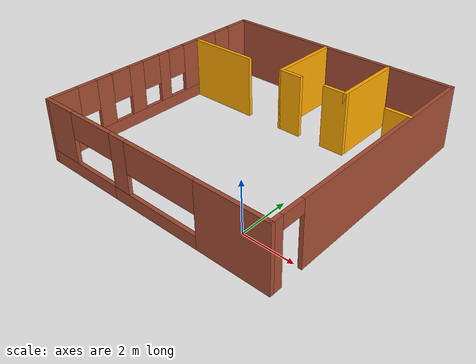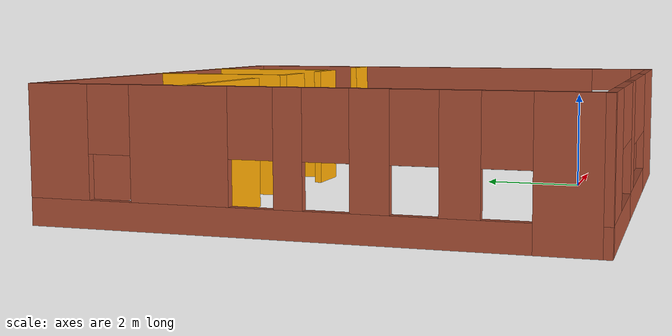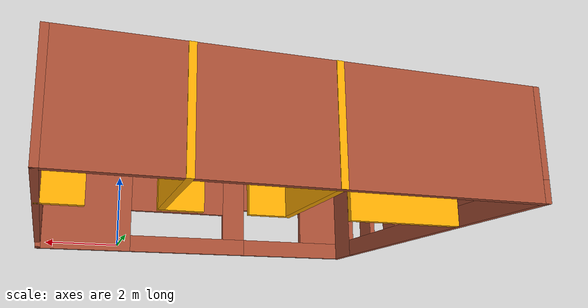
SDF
<?xml version='1.0'?>
<sdf version='1.6'>
  <model name='environment'>
    <pose frame=''>-2.69784 3.58738 0 0 -0 0</pose>
    <link name='Wall_1'>
      <pose frame=''>4.925 -0.006826 0 0 0 -1.5708</pose>
      <visual name='Wall_1_Visual_0'>
        <pose frame=''>-0.690166 0 1.25 0 -0 0</pose>
        <geometry>
          <box>
            <size>8.61967 0.15 2.5</size>
          </box>
        </geometry>
        <material>
          <script>
            <uri>file://media/materials/scripts/gazebo.material</uri>
            <name>Gazebo/Bricks</name>
          </script>
          <ambient>1 1 1 1</ambient>
        </material>
        <meta>
          <layer>0</layer>
        </meta>
      </visual>
      <collision name='Wall_1_Collision_0'>
        <geometry>
          <box>
            <size>8.61967 0.15 2.5</size>
          </box>
        </geometry>
        <pose frame=''>-0.690166 0 1.25 0 -0 0</pose>
      </collision>
      <visual name='Wall_1_Visual_1'>
        <pose frame=''>4.75983 0 1.25 0 -0 0</pose>
        <geometry>
          <box>
            <size>0.480332 0.15 2.5</size>
          </box>
        </geometry>
        <material>
          <script>
            <uri>file://media/materials/scripts/gazebo.material</uri>
            <name>Gazebo/Bricks</name>
          </script>
          <ambient>1 1 1 1</ambient>
        </material>
        <meta>
          <layer>0</layer>
        </meta>
      </visual>
      <collision name='Wall_1_Collision_1'>
        <geometry>
          <box>
            <size>0.480332 0.15 2.5</size>
          </box>
        </geometry>
        <pose frame=''>4.75983 0 1.25 0 -0 0</pose>
      </collision>
      <visual name='Wall_1_Visual_2'>
        <pose frame=''>4.06967 0 2.25 0 -0 0</pose>
        <geometry>
          <box>
            <size>0.9 0.15 0.5</size>
          </box>
        </geometry>
        <material>
          <script>
            <uri>file://media/materials/scripts/gazebo.material</uri>
            <name>Gazebo/Bricks</name>
          </script>
          <ambient>1 1 1 1</ambient>
        </material>
        <meta>
          <layer>0</layer>
        </meta>
      </visual>
      <collision name='Wall_1_Collision_2'>
        <geometry>
          <box>
            <size>0.9 0.15 0.5</size>
          </box>
        </geometry>
        <pose frame=''>4.06967 0 2.25 0 -0 0</pose>
      </collision>
    </link>
    <link name='Wall_15'>
      <collision name='Wall_15_Collision'>
        <geometry>
          <box>
            <size>3 0.15 2.5</size>
          </box>
        </geometry>
        <pose frame=''>0 0 1.25 0 -0 0</pose>
      </collision>
      <visual name='Wall_15_Visual'>
        <pose frame=''>0 0 1.25 0 -0 0</pose>
        <geometry>
          <box>
            <size>3 0.15 2.5</size>
          </box>
        </geometry>
        <material>
          <script>
            <uri>file://media/materials/scripts/gazebo.material</uri>
            <name>Gazebo/Grey</name>
          </script>
          <ambient>1 0.666667 0 1</ambient>
        </material>
        <meta>
          <layer>0</layer>
        </meta>
      </visual>
      <pose frame=''>2.40628 3.50683 0 0 0 -1.5708</pose>
    </link>
    <link name='Wall_19'>
      <collision name='Wall_19_Collision'>
        <geometry>
          <box>
            <size>3 0.15 2.5</size>
          </box>
        </geometry>
        <pose frame=''>0 0 1.25 0 -0 0</pose>
      </collision>
      <visual name='Wall_19_Visual'>
        <pose frame=''>0 0 1.25 0 -0 0</pose>
        <geometry>
          <box>
            <size>3 0.15 2.5</size>
          </box>
        </geometry>
        <material>
          <script>
            <uri>file://media/materials/scripts/gazebo.material</uri>
            <name>Gazebo/Grey</name>
          </script>
          <ambient>1 0.666667 0 1</ambient>
        </material>
        <meta>
          <layer>0</layer>
        </meta>
      </visual>
      <pose frame=''>-0.443723 3.50683 0 0 -0 1.5708</pose>
    </link>
    <link name='Wall_2'>
      <pose frame=''>0 -4.93183 0 0 -0 3.14159</pose>
      <visual name='Wall_2_Visual_0'>
        <pose frame=''>-3.58522 0 1.25 0 -0 0</pose>
        <geometry>
          <box>
            <size>2.82955 0.15 2.5</size>
          </box>
        </geometry>
        <material>
          <script>
            <uri>file://media/materials/scripts/gazebo.material</uri>
            <name>Gazebo/Bricks</name>
          </script>
          <ambient>1 1 1 1</ambient>
        </material>
        <meta>
          <layer>0</layer>
        </meta>
      </visual>
      <collision name='Wall_2_Collision_0'>
        <geometry>
          <box>
            <size>2.82955 0.15 2.5</size>
          </box>
        </geometry>
        <pose frame=''>-3.58522 0 1.25 0 -0 0</pose>
      </collision>
      <visual name='Wall_2_Visual_1'>
        <pose frame=''>-0.311138 0 0.25 0 -0 0</pose>
        <geometry>
          <box>
            <size>3.71862 0.15 0.5</size>
          </box>
        </geometry>
        <material>
          <script>
            <uri>file://media/materials/scripts/gazebo.material</uri>
            <name>Gazebo/Bricks</name>
          </script>
          <ambient>1 1 1 1</ambient>
        </material>
        <meta>
          <layer>0</layer>
        </meta>
      </visual>
      <collision name='Wall_2_Collision_1'>
        <geometry>
          <box>
            <size>3.71862 0.15 0.5</size>
          </box>
        </geometry>
        <pose frame=''>-0.311138 0 0.25 0 -0 0</pose>
      </collision>
      <visual name='Wall_2_Visual_2'>
        <pose frame=''>3.27409 0 0.25 0 -0 0</pose>
        <geometry>
          <box>
            <size>3.45183 0.15 0.5</size>
          </box>
        </geometry>
        <material>
          <script>
            <uri>file://media/materials/scripts/gazebo.material</uri>
            <name>Gazebo/Bricks</name>
          </script>
          <ambient>1 1 1 1</ambient>
        </material>
        <meta>
          <layer>0</layer>
        </meta>
      </visual>
      <collision name='Wall_2_Collision_2'>
        <geometry>
          <box>
            <size>3.45183 0.15 0.5</size>
          </box>
        </geometry>
        <pose frame=''>3.27409 0 0.25 0 -0 0</pose>
      </collision>
      <visual name='Wall_2_Visual_3'>
        <pose frame=''>4.27409 0 1.5 0 -0 0</pose>
        <geometry>
          <box>
            <size>1.45183 0.15 2</size>
          </box>
        </geometry>
        <material>
          <script>
            <uri>file://media/materials/scripts/gazebo.material</uri>
            <name>Gazebo/Bricks</name>
          </script>
          <ambient>1 1 1 1</ambient>
        </material>
        <meta>
          <layer>0</layer>
        </meta>
      </visual>
      <collision name='Wall_2_Collision_3'>
        <geometry>
          <box>
            <size>1.45183 0.15 2</size>
          </box>
        </geometry>
        <pose frame=''>4.27409 0 1.5 0 -0 0</pose>
      </collision>
      <visual name='Wall_2_Visual_4'>
        <pose frame=''>1.18886 0 1.5 0 -0 0</pose>
        <geometry>
          <box>
            <size>0.718624 0.15 2</size>
          </box>
        </geometry>
        <material>
          <script>
            <uri>file://media/materials/scripts/gazebo.material</uri>
            <name>Gazebo/Bricks</name>
          </script>
          <ambient>1 1 1 1</ambient>
        </material>
        <meta>
          <layer>0</layer>
        </meta>
      </visual>
      <collision name='Wall_2_Collision_4'>
        <geometry>
          <box>
            <size>0.718624 0.15 2</size>
          </box>
        </geometry>
        <pose frame=''>1.18886 0 1.5 0 -0 0</pose>
      </collision>
      <visual name='Wall_2_Visual_5'>
        <pose frame=''>1.18886 0 1.5 0 -0 0</pose>
        <geometry>
          <box>
            <size>0.718624 0.15 2</size>
          </box>
        </geometry>
        <material>
          <script>
            <uri>file://media/materials/scripts/gazebo.material</uri>
            <name>Gazebo/Bricks</name>
          </script>
          <ambient>1 1 1 1</ambient>
        </material>
        <meta>
          <layer>0</layer>
        </meta>
      </visual>
      <collision name='Wall_2_Collision_5'>
        <geometry>
          <box>
            <size>0.718624 0.15 2</size>
          </box>
        </geometry>
        <pose frame=''>1.18886 0 1.5 0 -0 0</pose>
      </collision>
      <visual name='Wall_2_Visual_6'>
        <pose frame=''>-0.67045 0 1.9 0 -0 0</pose>
        <geometry>
          <box>
            <size>3 0.15 1.2</size>
          </box>
        </geometry>
        <material>
          <script>
            <uri>file://media/materials/scripts/gazebo.material</uri>
            <name>Gazebo/Bricks</name>
          </script>
          <ambient>1 1 1 1</ambient>
        </material>
        <meta>
          <layer>0</layer>
        </meta>
      </visual>
      <collision name='Wall_2_Collision_6'>
        <geometry>
          <box>
            <size>3 0.15 1.2</size>
          </box>
        </geometry>
        <pose frame=''>-0.67045 0 1.9 0 -0 0</pose>
      </collision>
      <visual name='Wall_2_Visual_7'>
        <pose frame=''>2.54817 0 2 0 -0 0</pose>
        <geometry>
          <box>
            <size>2 0.15 1</size>
          </box>
        </geometry>
        <material>
          <script>
            <uri>file://media/materials/scripts/gazebo.material</uri>
            <name>Gazebo/Bricks</name>
          </script>
          <ambient>1 1 1 1</ambient>
        </material>
        <meta>
          <layer>0</layer>
        </meta>
      </visual>
      <collision name='Wall_2_Collision_7'>
        <geometry>
          <box>
            <size>2 0.15 1</size>
          </box>
        </geometry>
        <pose frame=''>2.54817 0 2 0 -0 0</pose>
      </collision>
      <visual name='Wall_2_Visual_8'>
        <pose frame=''>2.54817 0 2 0 -0 0</pose>
        <geometry>
          <box>
            <size>2 0.15 1</size>
          </box>
        </geometry>
        <material>
          <script>
            <uri>file://media/materials/scripts/gazebo.material</uri>
            <name>Gazebo/Bricks</name>
          </script>
          <ambient>1 1 1 1</ambient>
        </material>
        <meta>
          <layer>0</layer>
        </meta>
      </visual>
      <collision name='Wall_2_Collision_8'>
        <geometry>
          <box>
            <size>2 0.15 1</size>
          </box>
        </geometry>
        <pose frame=''>2.54817 0 2 0 -0 0</pose>
      </collision>
    </link>
    <link name='Wall_23'>
      <collision name='Wall_23_Collision'>
        <geometry>
          <box>
            <size>3 0.15 2.5</size>
          </box>
        </geometry>
        <pose frame=''>0 0 1.25 0 -0 0</pose>
      </collision>
      <visual name='Wall_23_Visual'>
        <pose frame=''>0 0 1.25 0 -0 0</pose>
        <geometry>
          <box>
            <size>3 0.15 2.5</size>
          </box>
        </geometry>
        <material>
          <script>
            <uri>file://media/materials/scripts/gazebo.material</uri>
            <name>Gazebo/Grey</name>
          </script>
          <ambient>1 0.666667 0 1</ambient>
        </material>
        <meta>
          <layer>0</layer>
        </meta>
      </visual>
      <pose frame=''>-3.4802 2.05808 0 0 -0 0</pose>
    </link>
    <link name='Wall_25'>
      <collision name='Wall_25_Collision'>
        <geometry>
          <box>
            <size>1 0.15 2.5</size>
          </box>
        </geometry>
        <pose frame=''>0 0 1.25 0 -0 0</pose>
      </collision>
      <visual name='Wall_25_Visual'>
        <pose frame=''>0 0 1.25 0 -0 0</pose>
        <geometry>
          <box>
            <size>1 0.15 2.5</size>
          </box>
        </geometry>
        <material>
          <script>
            <uri>file://media/materials/scripts/gazebo.material</uri>
            <name>Gazebo/Grey</name>
          </script>
          <ambient>1 0.666667 0 1</ambient>
        </material>
        <meta>
          <layer>0</layer>
        </meta>
      </visual>
      <pose frame=''>-0.018723 2.08183 0 0 -0 0</pose>
    </link>
    <link name='Wall_27'>
      <collision name='Wall_27_Collision'>
        <geometry>
          <box>
            <size>1 0.15 2.5</size>
          </box>
        </geometry>
        <pose frame=''>0 0 1.25 0 -0 0</pose>
      </collision>
      <visual name='Wall_27_Visual'>
        <pose frame=''>0 0 1.25 0 -0 0</pose>
        <geometry>
          <box>
            <size>1 0.15 2.5</size>
          </box>
        </geometry>
        <material>
          <script>
            <uri>file://media/materials/scripts/gazebo.material</uri>
            <name>Gazebo/Grey</name>
          </script>
          <ambient>1 0.666667 0 1</ambient>
        </material>
        <meta>
          <layer>0</layer>
        </meta>
      </visual>
      <pose frame=''>1.98128 2.08183 0 0 -0 3.14159</pose>
    </link>
    <link name='Wall_29'>
      <collision name='Wall_29_Collision'>
        <geometry>
          <box>
            <size>1 0.15 2.5</size>
          </box>
        </geometry>
        <pose frame=''>0 0 1.25 0 -0 0</pose>
      </collision>
      <visual name='Wall_29_Visual'>
        <pose frame=''>0 0 1.25 0 -0 0</pose>
        <geometry>
          <box>
            <size>1 0.15 2.5</size>
          </box>
        </geometry>
        <material>
          <script>
            <uri>file://media/materials/scripts/gazebo.material</uri>
            <name>Gazebo/Grey</name>
          </script>
          <ambient>1 0.666667 0 1</ambient>
        </material>
        <meta>
          <layer>0</layer>
        </meta>
      </visual>
      <pose frame=''>4.46952 2.0713 0 0 -0 3.14159</pose>
    </link>
    <link name='Wall_3'>
      <pose frame=''>-4.925 -0.006826 0 0 -0 1.5708</pose>
      <visual name='Wall_3_Visual_0'>
        <pose frame=''>-4.3936 0 1.25 0 -0 0</pose>
        <geometry>
          <box>
            <size>1.21279 0.15 2.5</size>
          </box>
        </geometry>
        <material>
          <script>
            <uri>file://media/materials/scripts/gazebo.material</uri>
            <name>Gazebo/Bricks</name>
          </script>
          <ambient>1 1 1 1</ambient>
        </material>
        <meta>
          <layer>0</layer>
        </meta>
      </visual>
      <collision name='Wall_3_Collision_0'>
        <geometry>
          <box>
            <size>1.21279 0.15 2.5</size>
          </box>
        </geometry>
        <pose frame=''>-4.3936 0 1.25 0 -0 0</pose>
      </collision>
      <visual name='Wall_3_Visual_1'>
        <pose frame=''>0.606395 0 0.25 0 -0 0</pose>
        <geometry>
          <box>
            <size>8.78721 0.15 0.5</size>
          </box>
        </geometry>
        <material>
          <script>
            <uri>file://media/materials/scripts/gazebo.material</uri>
            <name>Gazebo/Bricks</name>
          </script>
          <ambient>1 1 1 1</ambient>
        </material>
        <meta>
          <layer>0</layer>
        </meta>
      </visual>
      <collision name='Wall_3_Collision_1'>
        <geometry>
          <box>
            <size>8.78721 0.15 0.5</size>
          </box>
        </geometry>
        <pose frame=''>0.606395 0 0.25 0 -0 0</pose>
      </collision>
      <visual name='Wall_3_Visual_2'>
        <pose frame=''>-2.65571 0 1.5 0 -0 0</pose>
        <geometry>
          <box>
            <size>0.663011 0.15 2</size>
          </box>
        </geometry>
        <material>
          <script>
            <uri>file://media/materials/scripts/gazebo.material</uri>
            <name>Gazebo/Bricks</name>
          </script>
          <ambient>1 1 1 1</ambient>
        </material>
        <meta>
          <layer>0</layer>
        </meta>
      </visual>
      <collision name='Wall_3_Collision_2'>
        <geometry>
          <box>
            <size>0.663011 0.15 2</size>
          </box>
        </geometry>
        <pose frame=''>-2.65571 0 1.5 0 -0 0</pose>
      </collision>
      <visual name='Wall_3_Visual_3'>
        <pose frame=''>-1.19269 0 1.5 0 -0 0</pose>
        <geometry>
          <box>
            <size>0.663011 0.15 2</size>
          </box>
        </geometry>
        <material>
          <script>
            <uri>file://media/materials/scripts/gazebo.material</uri>
            <name>Gazebo/Bricks</name>
          </script>
          <ambient>1 1 1 1</ambient>
        </material>
        <meta>
          <layer>0</layer>
        </meta>
      </visual>
      <collision name='Wall_3_Collision_3'>
        <geometry>
          <box>
            <size>0.663011 0.15 2</size>
          </box>
        </geometry>
        <pose frame=''>-1.19269 0 1.5 0 -0 0</pose>
      </collision>
      <visual name='Wall_3_Visual_4'>
        <pose frame=''>0.190516 0 1.5 0 -0 0</pose>
        <geometry>
          <box>
            <size>0.50341 0.15 2</size>
          </box>
        </geometry>
        <material>
          <script>
            <uri>file://media/materials/scripts/gazebo.material</uri>
            <name>Gazebo/Bricks</name>
          </script>
          <ambient>1 1 1 1</ambient>
        </material>
        <meta>
          <layer>0</layer>
        </meta>
      </visual>
      <collision name='Wall_3_Collision_4'>
        <geometry>
          <box>
            <size>0.50341 0.15 2</size>
          </box>
        </geometry>
        <pose frame=''>0.190516 0 1.5 0 -0 0</pose>
      </collision>
      <visual name='Wall_3_Visual_5'>
        <pose frame=''>2.14563 0 1.5 0 -0 0</pose>
        <geometry>
          <box>
            <size>1.80682 0.15 2</size>
          </box>
        </geometry>
        <material>
          <script>
            <uri>file://media/materials/scripts/gazebo.material</uri>
            <name>Gazebo/Bricks</name>
          </script>
          <ambient>1 1 1 1</ambient>
        </material>
        <meta>
          <layer>0</layer>
        </meta>
      </visual>
      <collision name='Wall_3_Collision_5'>
        <geometry>
          <box>
            <size>1.80682 0.15 2</size>
          </box>
        </geometry>
        <pose frame=''>2.14563 0 1.5 0 -0 0</pose>
      </collision>
      <visual name='Wall_3_Visual_6'>
        <pose frame=''>4.42452 0 1.5 0 -0 0</pose>
        <geometry>
          <box>
            <size>1.15096 0.15 2</size>
          </box>
        </geometry>
        <material>
          <script>
            <uri>file://media/materials/scripts/gazebo.material</uri>
            <name>Gazebo/Bricks</name>
          </script>
          <ambient>1 1 1 1</ambient>
        </material>
        <meta>
          <layer>0</layer>
        </meta>
      </visual>
      <collision name='Wall_3_Collision_6'>
        <geometry>
          <box>
            <size>1.15096 0.15 2</size>
          </box>
        </geometry>
        <pose frame=''>4.42452 0 1.5 0 -0 0</pose>
      </collision>
      <visual name='Wall_3_Visual_7'>
        <pose frame=''>-3.38721 0 1.9 0 -0 0</pose>
        <geometry>
          <box>
            <size>0.8 0.15 1.2</size>
          </box>
        </geometry>
        <material>
          <script>
            <uri>file://media/materials/scripts/gazebo.material</uri>
            <name>Gazebo/Bricks</name>
          </script>
          <ambient>1 1 1 1</ambient>
        </material>
        <meta>
          <layer>0</layer>
        </meta>
      </visual>
      <collision name='Wall_3_Collision_7'>
        <geometry>
          <box>
            <size>0.8 0.15 1.2</size>
          </box>
        </geometry>
        <pose frame=''>-3.38721 0 1.9 0 -0 0</pose>
      </collision>
      <visual name='Wall_3_Visual_8'>
        <pose frame=''>-1.9242 0 1.9 0 -0 0</pose>
        <geometry>
          <box>
            <size>0.8 0.15 1.2</size>
          </box>
        </geometry>
        <material>
          <script>
            <uri>file://media/materials/scripts/gazebo.material</uri>
            <name>Gazebo/Bricks</name>
          </script>
          <ambient>1 1 1 1</ambient>
        </material>
        <meta>
          <layer>0</layer>
        </meta>
      </visual>
      <collision name='Wall_3_Collision_8'>
        <geometry>
          <box>
            <size>0.8 0.15 1.2</size>
          </box>
        </geometry>
        <pose frame=''>-1.9242 0 1.9 0 -0 0</pose>
      </collision>
      <visual name='Wall_3_Visual_9'>
        <pose frame=''>-0.461188 0 1.9 0 -0 0</pose>
        <geometry>
          <box>
            <size>0.8 0.15 1.2</size>
          </box>
        </geometry>
        <material>
          <script>
            <uri>file://media/materials/scripts/gazebo.material</uri>
            <name>Gazebo/Bricks</name>
          </script>
          <ambient>1 1 1 1</ambient>
        </material>
        <meta>
          <layer>0</layer>
        </meta>
      </visual>
      <collision name='Wall_3_Collision_9'>
        <geometry>
          <box>
            <size>0.8 0.15 1.2</size>
          </box>
        </geometry>
        <pose frame=''>-0.461188 0 1.9 0 -0 0</pose>
      </collision>
      <visual name='Wall_3_Visual_10'>
        <pose frame=''>0.842221 0 1.9 0 -0 0</pose>
        <geometry>
          <box>
            <size>0.8 0.15 1.2</size>
          </box>
        </geometry>
        <material>
          <script>
            <uri>file://media/materials/scripts/gazebo.material</uri>
            <name>Gazebo/Bricks</name>
          </script>
          <ambient>1 1 1 1</ambient>
        </material>
        <meta>
          <layer>0</layer>
        </meta>
      </visual>
      <collision name='Wall_3_Collision_10'>
        <geometry>
          <box>
            <size>0.8 0.15 1.2</size>
          </box>
        </geometry>
        <pose frame=''>0.842221 0 1.9 0 -0 0</pose>
      </collision>
      <visual name='Wall_3_Visual_11'>
        <pose frame=''>3.44904 0 1.9 0 -0 0</pose>
        <geometry>
          <box>
            <size>0.8 0.15 1.2</size>
          </box>
        </geometry>
        <material>
          <script>
            <uri>file://media/materials/scripts/gazebo.material</uri>
            <name>Gazebo/Bricks</name>
          </script>
          <ambient>1 1 1 1</ambient>
        </material>
        <meta>
          <layer>0</layer>
        </meta>
      </visual>
      <collision name='Wall_3_Collision_11'>
        <geometry>
          <box>
            <size>0.8 0.15 1.2</size>
          </box>
        </geometry>
        <pose frame=''>3.44904 0 1.9 0 -0 0</pose>
      </collision>
    </link>
    <link name='Wall_4'>
      <collision name='Wall_4_Collision'>
        <geometry>
          <box>
            <size>10 0.15 2.5</size>
          </box>
        </geometry>
        <pose frame=''>0 0 1.25 0 -0 0</pose>
      </collision>
      <visual name='Wall_4_Visual'>
        <pose frame=''>0 0 1.25 0 -0 0</pose>
        <geometry>
          <box>
            <size>10 0.15 2.5</size>
          </box>
        </geometry>
        <material>
          <script>
            <uri>file://media/materials/scripts/gazebo.material</uri>
            <name>Gazebo/Bricks</name>
          </script>
          <ambient>1 1 1 1</ambient>
        </material>
        <meta>
          <layer>0</layer>
        </meta>
      </visual>
      <pose frame=''>0 4.91817 0 0 -0 0</pose>
    </link>
    <static>1</static>
  </model>
</sdf>
